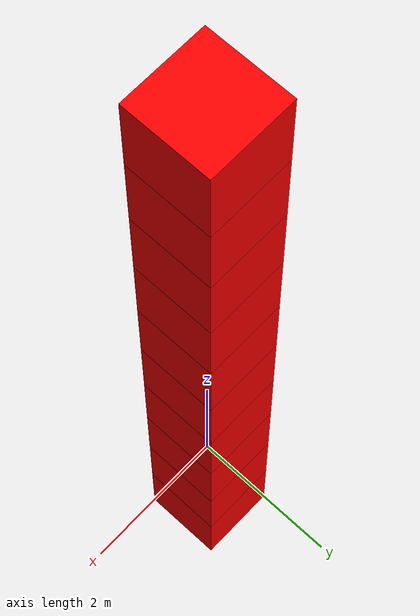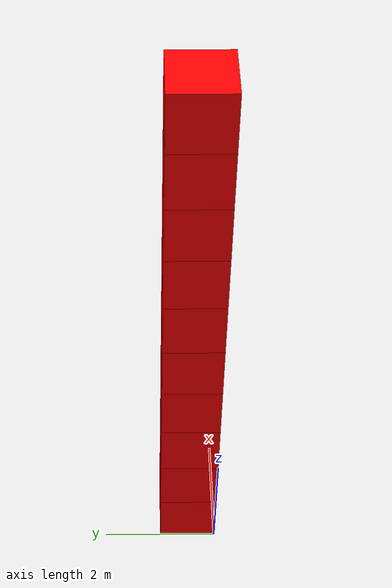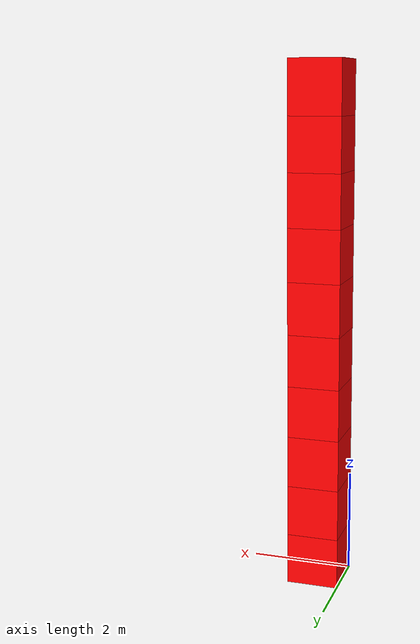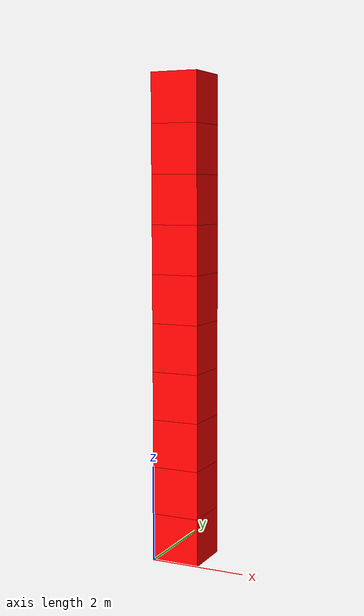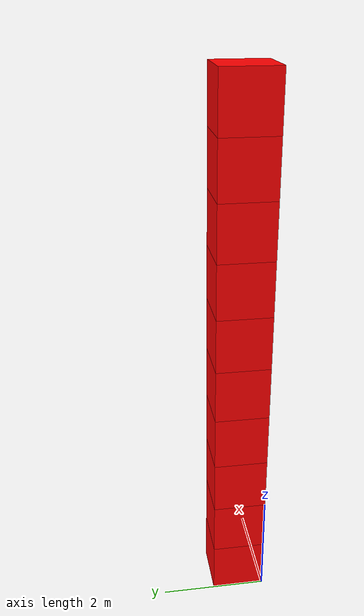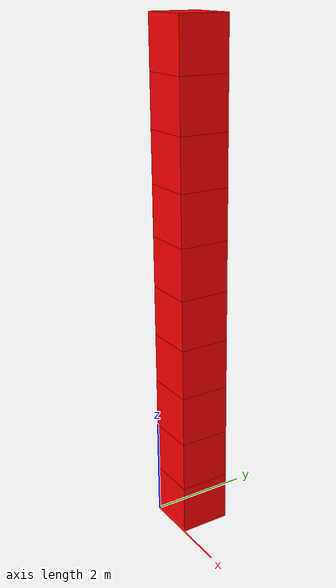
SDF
<?xml version='1.0'?>
<sdf version='1.6'>
<model name='slam_pillar'>
<static>true</static>
<include>
<uri>../models/slam_cube_red</uri>
<pose>0 0 0 0 0 0</pose>
</include>
<include>
<uri>../models/slam_cube_red</uri>
<pose>0 0 1 0 0 0</pose>
</include>
<include>
<uri>../models/slam_cube_red</uri>
<pose>0 0 2 0 0 0</pose>
</include>
<include>
<uri>../models/slam_cube_red</uri>
<pose>0 0 3 0 0 0</pose>
</include>
<include>
<uri>../models/slam_cube_red</uri>
<pose>0 0 4 0 0 0</pose>
</include>
<include>
<uri>../models/slam_cube_red</uri>
<pose>0 0 5 0 0 0</pose>
</include>
<include>
<uri>../models/slam_cube_red</uri>
<pose>0 0 6 0 0 0</pose>
</include>
<include>
<uri>../models/slam_cube_red</uri>
<pose>0 0 7 0 0 0</pose>
</include>
<include>
<uri>../models/slam_cube_red</uri>
<pose>0 0 8 0 0 0</pose>
</include>
<include>
<uri>../models/slam_cube_red</uri>
<pose>0 0 9 0 0 0</pose>
</include>
</model>
</sdf>

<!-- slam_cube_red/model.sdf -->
<sdf version="1.5">
  <model name="cube">
    <static>true</static>
    <link name="link">
      <pose>0.5 0.5 0.5 0 0 0</pose>
      <visual name="visual">
        <geometry>
          <box>
            <size>1 1 1</size>
          </box>
        </geometry>
        <material>
          <ambient>1 0 0 1</ambient>
          <diffuse>1 0 0 1</diffuse>
        </material>
      </visual>
    </link>
  </model>
</sdf>
